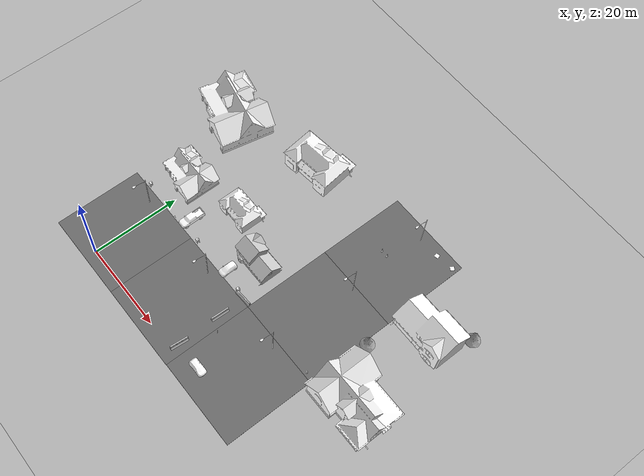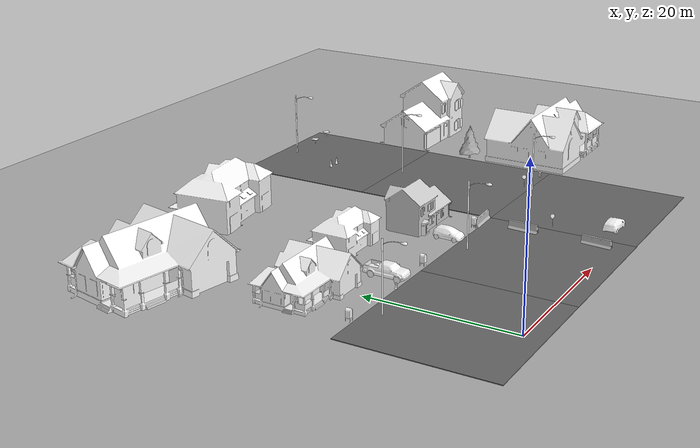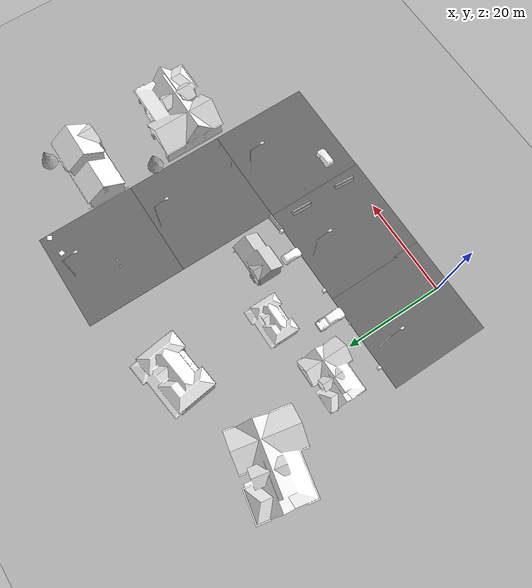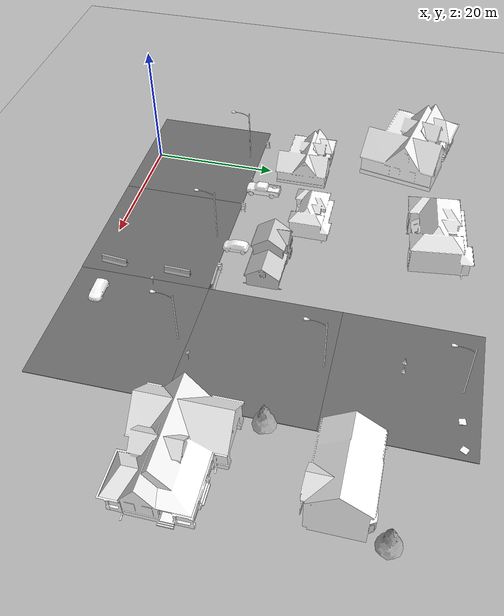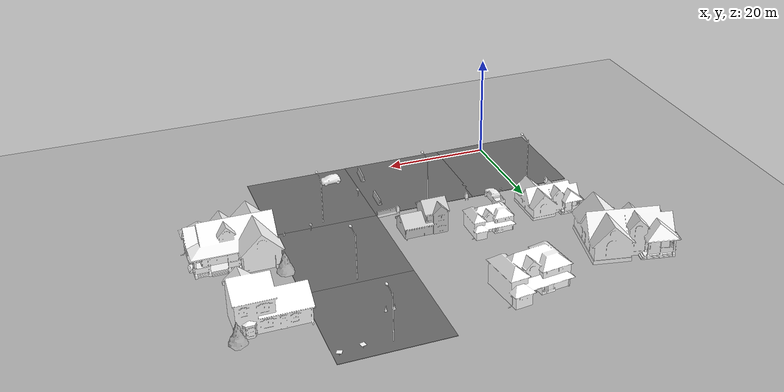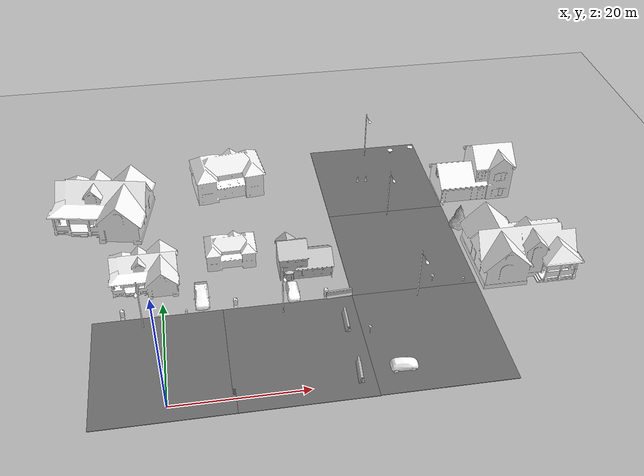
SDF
<sdf version="1.4">
 <world name="neighborhood">
  <plugin filename="gz-sim-physics-system" name="gz::sim::systems::Physics"/>
  <plugin filename="gz-sim-user-commands-system" name="gz::sim::systems::UserCommands"/>
  <plugin filename="gz-sim-scene-broadcaster-system" name="gz::sim::systems::SceneBroadcaster"/>
  <plugin filename="gz-sim-sensors-system" name="gz::sim::systems::Sensors">
   <render_engine>ogre2</render_engine>
  </plugin>
  <plugin filename="gz-sim-imu-system" name="gz::sim::systems::Imu"/>
  <model name="ground_plane">
   <static>1</static>
   <link name="link">
    <collision name="collision">
     <geometry><plane><normal>0 0 1</normal><size>100 100</size></plane></geometry>
     <surface><friction><ode><mu>100</mu><mu2>50</mu2></ode></friction></surface>
    </collision>
    <visual name="visual">
     <cast_shadows>0</cast_shadows>
     <geometry><plane><normal>0 0 1</normal><size>100 100</size></plane></geometry>
     <material>
      <ambient>0.7 0.7 0.7 1</ambient>
      <diffuse>0.7 0.7 0.7 1</diffuse>
      <specular>0.1 0.1 0.1 1</specular>
     </material>
    </visual>
    <velocity_decay><linear>0</linear><angular>0</angular></velocity_decay>
   </link>
  </model>
  <light name="sun" type="directional">
   <pose>0 0 10 0 -0 0</pose>
   <diffuse>0.8 0.8 0.8 1</diffuse>
   <specular>0.2 0.2 0.2 1</specular>
   <attenuation>
    <range>1000</range>
    <constant>0.9</constant>
    <linear>0.01</linear>
    <quadratic>0.001</quadratic>
   </attenuation>
   <direction>-0.5 0.1 -0.9</direction>
  </light>
  <physics type="ode">
   <max_step_size>0.001</max_step_size>
   <real_time_factor>1</real_time_factor>
   <real_time_update_rate>1000</real_time_update_rate>
   <gravity>0 0 -9.8</gravity>
  </physics>
  <scene><ambient>0.4 0.4 0.4 1</ambient><background>0.7 0.7 0.7 1</background><shadows>1</shadows></scene>
  <spherical_coordinates>
   <surface_model>EARTH_WGS84</surface_model>
   <latitude_deg>56.164520029</latitude_deg>
   <longitude_deg>10.1453534275</longitude_deg>
   <elevation>100.0</elevation>
   <heading_deg>0.0</heading_deg>
  </spherical_coordinates>
  <model name="asphalt_plane_3">
   <static>1</static>
   <link name="link">
    <collision name="collision"><geometry><box><size>20 20 0.1</size></box></geometry></collision>
    <visual name="visual">
     <cast_shadows>0</cast_shadows>
     <geometry><box><size>20 20 0.1</size></box></geometry>
     <material>
      <ambient>0.42 0.42 0.42 1.0</ambient>
      <diffuse>0.42 0.42 0.42 1.0</diffuse>
      <specular>0.12 0.12 0.12 1.0</specular>
      <pbr>
       <metal>
        <albedo_map>model://asphalt_plane/materials/textures/tarmac.png</albedo_map>
        <roughness>0.85</roughness>
        <metalness>0.0</metalness>
       </metal>
      </pbr>
     </material>
    </visual>
    <velocity_decay><linear>0</linear><angular>0</angular></velocity_decay>
   </link>
   <pose>-0.579832 7.43849 0 0 -0 0</pose>
  </model>
  <model name="asphalt_plane_4">
   <static>1</static>
   <link name="link">
    <collision name="collision"><geometry><box><size>20 20 0.1</size></box></geometry></collision>
    <visual name="visual">
     <cast_shadows>0</cast_shadows>
     <geometry><box><size>20 20 0.1</size></box></geometry>
     <material>
      <ambient>0.42 0.42 0.42 1.0</ambient>
      <diffuse>0.42 0.42 0.42 1.0</diffuse>
      <specular>0.12 0.12 0.12 1.0</specular>
      <pbr>
       <metal>
        <albedo_map>model://asphalt_plane/materials/textures/tarmac.png</albedo_map>
        <roughness>0.85</roughness>
        <metalness>0.0</metalness>
       </metal>
      </pbr>
     </material>
    </visual>
    <velocity_decay><linear>0</linear><angular>0</angular></velocity_decay>
   </link>
   <pose>19 7.43486 0 0 -0 0</pose>
  </model>
  <model name="asphalt_plane_6">
   <static>1</static>
   <link name="link">
    <collision name="collision"><geometry><box><size>20 20 0.1</size></box></geometry></collision>
    <visual name="visual">
     <cast_shadows>0</cast_shadows>
     <geometry><box><size>20 20 0.1</size></box></geometry>
     <material>
      <ambient>0.42 0.42 0.42 1.0</ambient>
      <diffuse>0.42 0.42 0.42 1.0</diffuse>
      <specular>0.12 0.12 0.12 1.0</specular>
      <pbr>
       <metal>
        <albedo_map>model://asphalt_plane/materials/textures/tarmac.png</albedo_map>
        <roughness>0.85</roughness>
        <metalness>0.0</metalness>
       </metal>
      </pbr>
     </material>
    </visual>
    <velocity_decay><linear>0</linear><angular>0</angular></velocity_decay>
   </link>
   <pose>39 7.49528 0 0 -0 0</pose>
  </model>
  <model name="asphalt_plane_7">
   <static>1</static>
   <link name="link">
    <collision name="collision"><geometry><box><size>20 20 0.1</size></box></geometry></collision>
    <visual name="visual">
     <cast_shadows>0</cast_shadows>
     <geometry><box><size>20 20 0.1</size></box></geometry>
     <material>
      <ambient>0.42 0.42 0.42 1.0</ambient>
      <diffuse>0.42 0.42 0.42 1.0</diffuse>
      <specular>0.12 0.12 0.12 1.0</specular>
      <pbr>
       <metal>
        <albedo_map>model://asphalt_plane/materials/textures/tarmac.png</albedo_map>
        <roughness>0.85</roughness>
        <metalness>0.0</metalness>
       </metal>
      </pbr>
     </material>
    </visual>
    <velocity_decay><linear>0</linear><angular>0</angular></velocity_decay>
   </link>
   <pose>39 27.4494 0 0 -0 0</pose>
  </model>
  <model name="asphalt_plane_9">
   <static>1</static>
   <link name="link">
    <collision name="collision"><geometry><box><size>20 20 0.1</size></box></geometry></collision>
    <visual name="visual">
     <cast_shadows>0</cast_shadows>
     <geometry><box><size>20 20 0.1</size></box></geometry>
     <material>
      <ambient>0.42 0.42 0.42 1.0</ambient>
      <diffuse>0.42 0.42 0.42 1.0</diffuse>
      <specular>0.12 0.12 0.12 1.0</specular>
      <pbr>
       <metal>
        <albedo_map>model://asphalt_plane/materials/textures/tarmac.png</albedo_map>
        <roughness>0.85</roughness>
        <metalness>0.0</metalness>
       </metal>
      </pbr>
     </material>
    </visual>
    <velocity_decay><linear>0</linear><angular>0</angular></velocity_decay>
   </link>
   <pose>39 47.4433 0 0 -0 0</pose>
  </model>
  <model name="House 1">
   <static>1</static>
   <link name="link">
    <collision name="collision">
     <geometry><mesh><uri>model://house_1/meshes/house_1.dae</uri></mesh></geometry>
    </collision>
    <visual name="visual">
     <geometry><mesh><uri>model://house_1/meshes/house_1.dae</uri></mesh></geometry>
     <material>
      <script>
       <uri>model://house_1/materials/scripts</uri>
       <uri>model://house_1/materials/textures</uri>
       <name>House_1/Diffuse</name>
      </script>
      <shader type="normal_map_object_space"><normal_map>House_1_Normal.png</normal_map></shader>
     </material>
    </visual>
    <velocity_decay><linear>0</linear><angular>0</angular></velocity_decay>
   </link>
   <pose>-2.40435 26 0 0 -0 0</pose>
  </model>
  <model name="House 2">
   <static>1</static>
   <link name="link">
    <collision name="collision">
     <geometry><mesh><uri>model://house_2/meshes/house_2.dae</uri></mesh></geometry>
    </collision>
    <visual name="visual">
     <geometry><mesh><uri>model://house_2/meshes/house_2.dae</uri></mesh></geometry>
     <material>
      <script>
       <uri>model://house_2/materials/scripts</uri>
       <uri>model://house_2/materials/textures</uri>
       <uri>model://house_1/materials/textures</uri>
       <name>House_2/Diffuse</name>
      </script>
      <shader type="normal_map_object_space">
       <normal_map>model://house_1/materials/textures/House_1_Normal.png</normal_map>
      </shader>
     </material>
    </visual>
    <velocity_decay><linear>0</linear><angular>0</angular></velocity_decay>
   </link>
   <pose>10.586 29 0 0 -0 0</pose>
  </model>
  <model name="House 3">
   <static>1</static>
   <link name="link">
    <collision name="collision">
     <geometry><mesh><uri>model://house_3/meshes/house_3.dae</uri></mesh></geometry>
    </collision>
    <visual name="visual">
     <geometry><mesh><uri>model://house_3/meshes/house_3.dae</uri></mesh></geometry>
     <material>
      <script>
       <uri>model://house_3/materials/scripts</uri>
       <uri>model://house_3/materials/textures</uri>
       <uri>model://house_1/materials/textures</uri>
       <name>House_3/Diffuse</name>
      </script>
      <shader type="normal_map_object_space">
       <normal_map>model://house_1/materials/textures/House_1_Normal.png</normal_map>
      </shader>
     </material>
    </visual>
    <velocity_decay><linear>0</linear><angular>0</angular></velocity_decay>
   </link>
   <pose>23 25 0 0 -0 0</pose>
  </model>
  <model name="jersey_barrier">
   <static>1</static>
   <link name="link">
    <visual name="visual">
     <geometry><mesh><uri>model://jersey_barrier/meshes/jersey_barrier.dae</uri></mesh></geometry>
    </visual>
    <collision name="upright">
     <pose>0 0 0.5715 0 -0 0</pose>
     <geometry><box><size>4.06542 0.3063 1.143</size></box></geometry>
    </collision>
    <collision name="base">
     <pose>0 0 0.032258 0 -0 0</pose>
     <geometry><box><size>4.06542 0.8107 0.064516</size></box></geometry>
    </collision>
    <collision name="base2">
     <pose>0 0 0.1 0 -0 0</pose>
     <geometry><box><size>4.06542 0.65 0.1</size></box></geometry>
    </collision>
    <collision name="base3">
     <pose>0 0 0.2 0 -0 0</pose>
     <geometry><box><size>4.06542 0.5 0.1</size></box></geometry>
    </collision>
    <collision name="left-angle">
     <pose>0 -0.224 0.2401 0.9 -0 0</pose>
     <geometry><box><size>4.06542 0.5 0.064516</size></box></geometry>
    </collision>
    <collision name="right-angle">
     <pose>0 0.224 0.2401 -0.9 0 0</pose>
     <geometry><box><size>4.06542 0.5 0.064516</size></box></geometry>
    </collision>
    <velocity_decay><linear>0</linear><angular>0</angular></velocity_decay>
   </link>
   <pose>27 17.8342 0 0 0 -3.08258</pose>
  </model>
  <model name="jersey_barrier_0">
   <static>1</static>
   <link name="link">
    <visual name="visual">
     <geometry><mesh><uri>model://jersey_barrier/meshes/jersey_barrier.dae</uri></mesh></geometry>
    </visual>
    <collision name="upright">
     <pose>0 0 0.5715 0 -0 0</pose>
     <geometry><box><size>4.06542 0.3063 1.143</size></box></geometry>
    </collision>
    <collision name="base">
     <pose>0 0 0.032258 0 -0 0</pose>
     <geometry><box><size>4.06542 0.8107 0.064516</size></box></geometry>
    </collision>
    <collision name="base2">
     <pose>0 0 0.1 0 -0 0</pose>
     <geometry><box><size>4.06542 0.65 0.1</size></box></geometry>
    </collision>
    <collision name="base3">
     <pose>0 0 0.2 0 -0 0</pose>
     <geometry><box><size>4.06542 0.5 0.1</size></box></geometry>
    </collision>
    <collision name="left-angle">
     <pose>0 -0.224 0.2401 0.9 -0 0</pose>
     <geometry><box><size>4.06542 0.5 0.064516</size></box></geometry>
    </collision>
    <collision name="right-angle">
     <pose>0 0.224 0.2401 -0.9 0 0</pose>
     <geometry><box><size>4.06542 0.5 0.064516</size></box></geometry>
    </collision>
    <velocity_decay><linear>0</linear><angular>0</angular></velocity_decay>
   </link>
   <pose>27 12 0 0.024381 -0.009147 1.53118</pose>
  </model>
  <model name="jersey_barrier_1">
   <static>1</static>
   <link name="link">
    <visual name="visual">
     <geometry><mesh><uri>model://jersey_barrier/meshes/jersey_barrier.dae</uri></mesh></geometry>
    </visual>
    <collision name="upright">
     <pose>0 0 0.5715 0 -0 0</pose>
     <geometry><box><size>4.06542 0.3063 1.143</size></box></geometry>
    </collision>
    <collision name="base">
     <pose>0 0 0.032258 0 -0 0</pose>
     <geometry><box><size>4.06542 0.8107 0.064516</size></box></geometry>
    </collision>
    <collision name="base2">
     <pose>0 0 0.1 0 -0 0</pose>
     <geometry><box><size>4.06542 0.65 0.1</size></box></geometry>
    </collision>
    <collision name="base3">
     <pose>0 0 0.2 0 -0 0</pose>
     <geometry><box><size>4.06542 0.5 0.1</size></box></geometry>
    </collision>
    <collision name="left-angle">
     <pose>0 -0.224 0.2401 0.9 -0 0</pose>
     <geometry><box><size>4.06542 0.5 0.064516</size></box></geometry>
    </collision>
    <collision name="right-angle">
     <pose>0 0.224 0.2401 -0.9 0 0</pose>
     <geometry><box><size>4.06542 0.5 0.064516</size></box></geometry>
    </collision>
    <velocity_decay><linear>0</linear><angular>0</angular></velocity_decay>
   </link>
   <pose>27 2 0 -0.006911 0.012543 1.48507</pose>
  </model>
  <include>
   <name>urban_detail_nb_house_4</name>
   <uri>model://house_1</uri>
   <pose>-9.000 43.000 0.000 0 0 -0.200000</pose>
  </include>
  <include>
   <name>urban_detail_nb_house_5</name>
   <uri>model://house_2</uri>
   <pose>11.500 48.500 0.000 0 0 0.120000</pose>
  </include>
  <include>
   <name>urban_detail_nb_house_6</name>
   <uri>model://house_3</uri>
   <pose>55.000 42.000 0.000 0 0 3.141600</pose>
  </include>
  <include>
   <name>urban_detail_nb_house_7</name>
   <uri>model://house_1</uri>
   <pose>57.000 21.500 0.000 0 0 3.141600</pose>
  </include>
  <include>
   <name>urban_detail_nb_postbox_1</name>
   <uri>model://postbox</uri>
   <pose>-6.000 18.000 0.000 0 0 1.570800</pose>
  </include>
  <include>
   <name>urban_detail_nb_postbox_2</name>
   <uri>model://postbox</uri>
   <pose>11.000 18.000 0.000 0 0 1.570800</pose>
  </include>
  <include>
   <name>urban_detail_nb_postbox_3</name>
   <uri>model://postbox</uri>
   <pose>25.000 18.000 0.000 0 0 1.570800</pose>
  </include>
  <include>
   <name>urban_detail_nb_postbox_4</name>
   <uri>model://postbox</uri>
   <pose>53.000 18.000 0.000 0 0 1.570800</pose>
  </include>
  <include>
   <name>urban_detail_nb_cafe_table_picnic_1</name>
   <uri>model://cafe_table</uri>
   <pose>44.000 55.000 0.000 0 0 0.200000</pose>
  </include>
  <include>
   <name>urban_detail_nb_cafe_table_picnic_2</name>
   <uri>model://cafe_table</uri>
   <pose>48.000 55.500 0.000 0 0 -0.500000</pose>
  </include>
  <include>
   <name>urban_detail_nb_pickup_driveway</name>
   <uri>model://pickup</uri>
   <pose>6.000 20.000 0.000 0 0 -1.570800</pose>
  </include>
  <include>
   <name>urban_detail_nb_hatchback_driveway</name>
   <uri>model://hatchback_blue</uri>
   <pose>20.000 19.500 0.000 0 0 -1.570800</pose>
  </include>
  <include>
   <name>urban_detail_nb_hatchback_red_parked</name>
   <uri>model://hatchback_red</uri>
   <pose>33.000 2.000 0.000 0 0 0.000000</pose>
  </include>
  <include>
   <name>urban_detail_nb_stop_sign_south</name>
   <uri>model://stop_sign</uri>
   <pose>30.000 9.200 0.000 0 0 -0.785400</pose>
  </include>
  <include>
   <name>urban_detail_nb_stop_sign_north</name>
   <uri>model://stop_sign</uri>
   <pose>42.000 18.500 0.000 0 0 2.356200</pose>
  </include>
  <include>
   <name>urban_detail_nb_fire_hydrant_1</name>
   <uri>model://fire_hydrant</uri>
   <pose>3.500 17.500 0.000 0 0 0.000000</pose>
  </include>
  <include>
   <name>urban_detail_nb_fire_hydrant_2</name>
   <uri>model://fire_hydrant</uri>
   <pose>47.000 18.200 0.000 0 0 0.000000</pose>
  </include>
  <include>
   <name>urban_detail_nb_lamp_1</name>
   <uri>model://lamp_post</uri>
   <pose>-3.000 15.500 0.000 0 0 0.000000</pose>
  </include>
  <include>
   <name>urban_detail_nb_lamp_2</name>
   <uri>model://lamp_post</uri>
   <pose>18.000 15.500 0.000 0 0 0.000000</pose>
  </include>
  <include>
   <name>urban_detail_nb_lamp_3</name>
   <uri>model://lamp_post</uri>
   <pose>39.000 16.000 0.000 0 0 0.000000</pose>
  </include>
  <include>
   <name>urban_detail_nb_lamp_4</name>
   <uri>model://lamp_post</uri>
   <pose>39.000 36.500 0.000 0 0 0.000000</pose>
  </include>
  <include>
   <name>urban_detail_nb_lamp_5</name>
   <uri>model://lamp_post</uri>
   <pose>39.000 55.000 0.000 0 0 0.000000</pose>
  </include>
  <include>
   <name>urban_detail_nb_pine_1</name>
   <uri>model://pine_tree</uri>
   <pose>50.000 31.000 0.000 0 0 0.800000</pose>
  </include>
  <include>
   <name>urban_detail_nb_pine_2</name>
   <uri>model://pine_tree</uri>
   <pose>62.000 48.000 0.000 0 0 2.600000</pose>
  </include>
  <include>
   <name>urban_detail_nb_cone_leafpile_1</name>
   <uri>model://construction_cone</uri>
   <pose>36.000 47.000 0.000 0 0 0.000000</pose>
  </include>
  <include>
   <name>urban_detail_nb_cone_leafpile_2</name>
   <uri>model://construction_cone</uri>
   <pose>37.500 47.000 0.000 0 0 0.000000</pose>
  </include>
  <include>
   <name>urban_detail_nb_cardboard_recycling</name>
   <uri>model://cardboard_box</uri>
   <pose>52.000 19.000 0.000 0 0 0.400000</pose>
  </include>
 </world>
</sdf>

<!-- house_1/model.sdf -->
<sdf version="1.5">
  <model name="House 1">
    <static>true</static>
    <link name="link">
      <collision name="collision">
        <geometry>
          <mesh>
            <uri>model://house_1/meshes/house_1.dae</uri>
            <scale>1.5 1.5 1.5</scale>
          </mesh>
        </geometry>
      </collision>
      <visual name="visual">
        <geometry>
          <mesh>
            <uri>model://house_1/meshes/house_1.dae</uri>
            <scale>1.5 1.5 1.5</scale>
          </mesh>
        </geometry>
        <material>
          <ambient>1 1 1 1</ambient>
          <diffuse>1 1 1 1</diffuse>
          <script>
            <uri>model://house_1/materials/scripts</uri>
            <uri>model://house_1/materials/textures</uri>
            <name>House_1/Diffuse</name>
          </script>
          <shader type="normal_map_tangent_space">
            <normal_map>House_1_Normal.png</normal_map>
          </shader>
          <pbr>
            <metal>
              <albedo_map>model://house_1/materials/textures/House_1_Diffuse.png</albedo_map>
              <roughness>0.82</roughness>
              <metalness>0.0</metalness>
            </metal>
          </pbr>
        </material>
      </visual>
    </link>
  </model>
</sdf>

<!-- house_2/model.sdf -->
<sdf version="1.5">
  <model name="House 2">
    <static>true</static>
    <link name="link">
      <collision name="collision">
        <geometry>
          <mesh>
            <uri>model://house_2/meshes/house_2.dae</uri>
            <scale>1.5 1.5 1.5</scale>
          </mesh>
        </geometry>
      </collision>
      <visual name="visual">
        <geometry>
          <mesh>
            <uri>model://house_2/meshes/house_2.dae</uri>
            <scale>1.5 1.5 1.5</scale>
          </mesh>
        </geometry>
        <material>
          <ambient>1 1 1 1</ambient>
          <diffuse>1 1 1 1</diffuse>
          <script>
            <uri>model://house_2/materials/scripts</uri>
            <uri>model://house_2/materials/textures</uri>
            <uri>model://house_1/materials/textures</uri>
            <name>House_2/Diffuse</name>
          </script>
          <shader type="normal_map_tangent_space">
            <normal_map>model://house_1/materials/textures/House_1_Normal.png</normal_map>
          </shader>
          <pbr>
            <metal>
              <albedo_map>model://house_2/materials/textures/House_2_Diffuse.png</albedo_map>
              <roughness>0.84</roughness>
              <metalness>0.0</metalness>
            </metal>
          </pbr>
        </material>
      </visual>
    </link>
  </model>
</sdf>

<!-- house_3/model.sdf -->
<sdf version="1.5">
  <model name="House 3">
    <static>true</static>
    <link name="link">
      <collision name="collision">
        <geometry>
          <mesh>
            <uri>model://house_3/meshes/house_3.dae</uri>
            <scale>1.5 1.5 1.5</scale>
          </mesh>
        </geometry>
      </collision>
      <visual name="visual">
        <geometry>
          <mesh>
            <uri>model://house_3/meshes/house_3.dae</uri>
            <scale>1.5 1.5 1.5</scale>
          </mesh>
        </geometry>
        <material>
          <ambient>1 1 1 1</ambient>
          <diffuse>1 1 1 1</diffuse>
          <script>
            <uri>model://house_3/materials/scripts</uri>
            <uri>model://house_3/materials/textures</uri>
            <uri>model://house_1/materials/textures</uri>
            <name>House_3/Diffuse</name>
          </script>
          <shader type="normal_map_tangent_space">
            <normal_map>model://house_1/materials/textures/House_1_Normal.png</normal_map>
          </shader>
          <pbr>
            <metal>
              <albedo_map>model://house_3/materials/textures/House_3_Diffuse.png</albedo_map>
              <roughness>0.84</roughness>
              <metalness>0.0</metalness>
            </metal>
          </pbr>
        </material>
      </visual>
    </link>
  </model>
</sdf>

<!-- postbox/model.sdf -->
<sdf version="1.6">
  <model name="postbox">
    <static>true</static>
    <link name="link">
      <collision name="collision">
        <pose>0 0 0.75 0 0 0</pose>
        <geometry>
          <box>
            <size>0.7 0.5 1.5</size>
          </box>
        </geometry>
      </collision>
      <visual name="visual">
        <geometry>
          <mesh>
            <uri>model://postbox/meshes/postbox.dae</uri>
          </mesh>
        </geometry>
        <material>
          <ambient>1 1 1 1</ambient>
          <diffuse>1 1 1 1</diffuse>
          <pbr>
            <metal>
              <albedo_map>model://postbox/materials/textures/postbox_diffuse.jpg</albedo_map>
              <roughness>0.72</roughness>
              <metalness>0.0</metalness>
            </metal>
          </pbr>
        </material>
      </visual>
    </link>
  </model>
</sdf>

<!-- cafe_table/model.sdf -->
<sdf version="1.5">
  <model name="cafe_table">
    <static>true</static>
    <link name="link">
      <collision name="surface">
        <pose>0 0 0.755 0 0 0</pose>
        <geometry>
          <box>
            <size>0.913 0.913 0.04</size>
          </box>
        </geometry>
      </collision>

      <collision name="column">
        <pose>0 0 0.37 0 0 0</pose>
        <geometry>
          <box>
            <size>0.042 0.042 0.74</size>
          </box>
        </geometry>
      </collision>

      <collision name="base">
        <pose>0 0 0.02 0 0 0</pose>
        <geometry>
          <box>
            <size>0.56 0.56 0.04</size>
          </box>
        </geometry>
      </collision>

      <visual name="visual">
        <geometry>
          <mesh>
            <uri>model://cafe_table/meshes/cafe_table.dae</uri>
          </mesh>
        </geometry>
        <material>
          <ambient>1 1 1 1</ambient>
          <diffuse>1 1 1 1</diffuse>
          <pbr>
            <metal>
              <albedo_map>model://cafe_table/materials/textures/Maple.jpg</albedo_map>
              <roughness>0.62</roughness>
              <metalness>0.0</metalness>
            </metal>
          </pbr>
        </material>
      </visual>
    </link>
  </model>
</sdf>

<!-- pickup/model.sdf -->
<sdf version="1.6">
  <model name="pickup">
    <static>true</static>
    <link name="link">
      <collision name="collision">
        <pose>0 0 0 0 0 -1.57079632679</pose>
        <geometry>
          <mesh>
            <uri>model://pickup/meshes/pickup.dae</uri>
          </mesh>
        </geometry>
      </collision>
      <visual name="visual">
        <pose>0 0 0 0 0 -1.57079632679</pose>
        <geometry>
          <mesh>
            <uri>model://pickup/meshes/pickup.dae</uri>
          </mesh>
        </geometry>
        <material>
          <ambient>1 1 1 1</ambient>
          <diffuse>1 1 1 1</diffuse>
          <pbr>
            <metal>
              <albedo_map>model://pickup/materials/textures/pickup_diffuse.jpg</albedo_map>
              <roughness>0.72</roughness>
              <metalness>0.0</metalness>
            </metal>
          </pbr>
        </material>
      </visual>
    </link>
  </model>
</sdf>

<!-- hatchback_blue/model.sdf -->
<sdf version="1.6">
  <model name="hatchback_blue">
    <static>true</static>
    <link name="link">
      <collision name="collision">
        <pose>0 0 0 0 0 1.57079632679</pose>
        <geometry>
          <mesh>
            <scale>0.0254 0.0254 0.0254</scale>
            <uri>model://hatchback_blue/meshes/hatchback.obj</uri>
          </mesh>
        </geometry>
      </collision>
      <visual name="visual">
        <pose>0 0 0 0 0 1.57079632679</pose>
        <geometry>
          <mesh>
            <scale>0.0254 0.0254 0.0254</scale>
            <uri>model://hatchback_blue/meshes/hatchback.obj</uri>
          </mesh>
        </geometry>
        <material>
          <ambient>1 1 1 1</ambient>
          <diffuse>1 1 1 1</diffuse>
          <pbr>
            <metal>
              <albedo_map>model://hatchback_blue/materials/textures/hatchback.png</albedo_map>
              <roughness>0.68</roughness>
              <metalness>0.0</metalness>
            </metal>
          </pbr>
        </material>
      </visual>
    </link>
  </model>
</sdf>

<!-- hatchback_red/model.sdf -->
<sdf version="1.6">
  <model name="hatchback_red">
    <static>true</static>
    <link name="link">
      <collision name="collision">
        <pose>0 0 0 0 0 1.57079632679</pose>
        <geometry>
          <mesh>
            <scale>0.0254 0.0254 0.0254</scale>
            <uri>model://hatchback_red/meshes/hatchback.obj</uri>
          </mesh>
        </geometry>
      </collision>
      <visual name="visual">
        <pose>0 0 0 0 0 1.57079632679</pose>
        <geometry>
          <mesh>
            <scale>0.0254 0.0254 0.0254</scale>
            <uri>model://hatchback_red/meshes/hatchback.obj</uri>
          </mesh>
        </geometry>
        <material>
          <ambient>1 1 1 1</ambient>
          <diffuse>1 1 1 1</diffuse>
          <pbr>
            <metal>
              <albedo_map>model://hatchback_red/materials/textures/hatchback.png</albedo_map>
              <roughness>0.68</roughness>
              <metalness>0.0</metalness>
            </metal>
          </pbr>
        </material>
      </visual>
    </link>
  </model>
</sdf>

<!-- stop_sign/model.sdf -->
<sdf version="1.5">
  <model name="Stop Sign">
    <static>true</static>
    <link name="link">
      <collision name="post_collision">
        <pose>0 0 1.05 0 0 0</pose>
        <geometry>
          <cylinder>
            <radius>0.04</radius>
            <length>2.1</length>
          </cylinder>
        </geometry>
      </collision>
      <collision name="sign_collision">
        <pose>0 0 2.15 0 0 0</pose>
        <geometry>
          <box>
            <size>0.75 0.06 0.75</size>
          </box>
        </geometry>
      </collision>
      <visual name="visual">
        <geometry>
          <mesh>
            <uri>model://stop_sign/meshes/stop_sign.dae</uri>
          </mesh>
        </geometry>
        <material>
          <ambient>1 1 1 1</ambient>
          <diffuse>1 1 1 1</diffuse>
          <script>
            <uri>model://stop_sign/materials/scripts</uri>
            <uri>model://stop_sign/materials/textures</uri>
            <name>StopSign/Diffuse</name>
          </script>
          <pbr>
            <metal>
              <albedo_map>model://stop_sign/materials/textures/StopSign_Diffuse.png</albedo_map>
              <roughness>0.72</roughness>
              <metalness>0.0</metalness>
            </metal>
          </pbr>
        </material>
      </visual>
    </link>
  </model>
</sdf>

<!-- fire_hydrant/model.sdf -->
<sdf version="1.5">
  <model name="fire_hydrant">
    <static>true</static>
    <link name="link">
      <collision name="collision">
        <geometry>
          <mesh>
            <uri>model://fire_hydrant/meshes/fire_hydrant.dae</uri>
          </mesh>
        </geometry>
      </collision>
      <visual name="visual">
        <geometry>
          <mesh>
            <uri>model://fire_hydrant/meshes/fire_hydrant.dae</uri>
          </mesh>
        </geometry>
        <material>
          <ambient>1 1 1 1</ambient>
          <diffuse>1 1 1 1</diffuse>
          <pbr>
            <metal>
              <albedo_map>model://fire_hydrant/materials/textures/fire_hydrant_diffuse.png</albedo_map>
              <roughness>0.55</roughness>
              <metalness>0.0</metalness>
            </metal>
          </pbr>
        </material>
      </visual>
    </link>
  </model>
</sdf>

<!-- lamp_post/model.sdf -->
<sdf version="1.5">
  <model name="Lamp Post">
    <static>true</static>
    <link name="link">
      <collision name="collision">
        <pose>0 0 3.25 0 0 0</pose>
        <geometry>
          <cylinder>
            <radius>0.08</radius>
            <length>6.5</length>
          </cylinder>
        </geometry>
      </collision>
      <visual name="visual">
        <geometry>
          <mesh>
            <uri>model://lamp_post/meshes/lamp_post.dae</uri>
            <scale>3 3 3</scale>
          </mesh>
        </geometry>
        <material>
          <ambient>1 1 1 1</ambient>
          <diffuse>1 1 1 1</diffuse>
          <pbr>
            <metal>
              <albedo_map>model://lamp_post/materials/textures/Lamp_Post_Diffuse.png</albedo_map>
              <roughness>0.64</roughness>
              <metalness>0.0</metalness>
            </metal>
          </pbr>
        </material>
      </visual>
    </link>
  </model>
</sdf>

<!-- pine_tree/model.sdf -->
<sdf version="1.6">
  <model name="pine_tree">
    <static>true</static>
    <link name="link">
      <collision name="collision">
        <pose>0 0 1.75 0 0 0</pose>
        <geometry>
          <cylinder>
            <radius>0.3</radius>
            <length>3.5</length>
          </cylinder>
        </geometry>
      </collision>
      <visual name="branch">
        <geometry>
          <mesh>
            <uri>model://pine_tree/meshes/pine_tree.dae</uri>
            <submesh>
              <name>Branch</name>
            </submesh>
          </mesh>
        </geometry>
        <material>
          <script>
            <uri>model://pine_tree/materials/scripts/</uri>
            <uri>model://pine_tree/materials/textures/</uri>
            <name>PineTree/Branch</name>
          </script>
        </material>
      </visual>
      <visual name="bark">
        <geometry>
          <mesh>
            <uri>model://pine_tree/meshes/pine_tree.dae</uri>
            <submesh>
              <name>Bark</name>
            </submesh>
          </mesh>
        </geometry>
        <material>
          <script>
            <uri>model://pine_tree/materials/scripts/</uri>
            <uri>model://pine_tree/materials/textures/</uri>
            <name>PineTree/Bark</name>
          </script>
        </material>
      </visual>
    </link>
  </model>
</sdf>

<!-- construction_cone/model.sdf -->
<sdf version="1.5">
  <model name="Construction Cone">
    <link name="link">
      <collision name="collision">
        <geometry>
          <mesh>
            <scale>10 10 10</scale>
            <uri>model://construction_cone/meshes/construction_cone.dae</uri>
          </mesh>
        </geometry>
      </collision>
      <visual name="visual">
        <geometry>
          <mesh>
            <scale>10 10 10</scale>
            <uri>model://construction_cone/meshes/construction_cone.dae</uri>
          </mesh>
        </geometry>
        <material>
          <ambient>1 1 1 1</ambient>
          <diffuse>1 1 1 1</diffuse>
          <pbr>
            <metal>
              <albedo_map>model://construction_cone/materials/textures/Construction_Cone_Diffuse.png</albedo_map>
              <roughness>0.62</roughness>
              <metalness>0.0</metalness>
            </metal>
          </pbr>
        </material>
      </visual>
    </link>
  </model>
</sdf>

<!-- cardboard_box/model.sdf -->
<sdf version="1.6">
  <model name="cardboard_box">
    <pose>0 0 0.15 0 0 0</pose>
    <link name="link">
      <inertial>
        <mass>2</mass>
        <inertia>
          <ixx>0.041666667</ixx>
          <ixy>0</ixy>
          <ixz>0</ixz>
          <iyy>0.056666667</iyy>
          <iyz>0</iyz>
          <izz>0.068333333</izz>
        </inertia>
      </inertial>
      <collision name="collision">
        <geometry>
          <box>
            <size>0.5 0.4 0.3</size>
          </box>
        </geometry>
        <surface>
          <friction>
            <ode>
              <mu>1.0</mu>
              <mu2>1.0</mu2>
            </ode>
          </friction>
          <contact>
            <ode>
              <kp>10000000.0</kp>
              <kd>1.0</kd>
              <min_depth>0.001</min_depth>
              <max_vel>0.1</max_vel>
            </ode>
          </contact>
        </surface>
      </collision>
      <visual name="visual">
        <pose>0 0 -0.15 0 0 0</pose>
        <geometry>
          <mesh>
            <uri>model://cardboard_box/meshes/cardboard_box.dae</uri>
            <scale>1.25931896 1.007455168 0.755591376</scale>
          </mesh>
        </geometry>
        <material>
          <ambient>1 1 1 1</ambient>
          <diffuse>1 1 1 1</diffuse>
          <pbr>
            <metal>
              <albedo_map>model://cardboard_box/materials/textures/cardboard_box.png</albedo_map>
              <roughness>0.9</roughness>
              <metalness>0.0</metalness>
            </metal>
          </pbr>
        </material>
      </visual>
    </link>
  </model>
</sdf>
